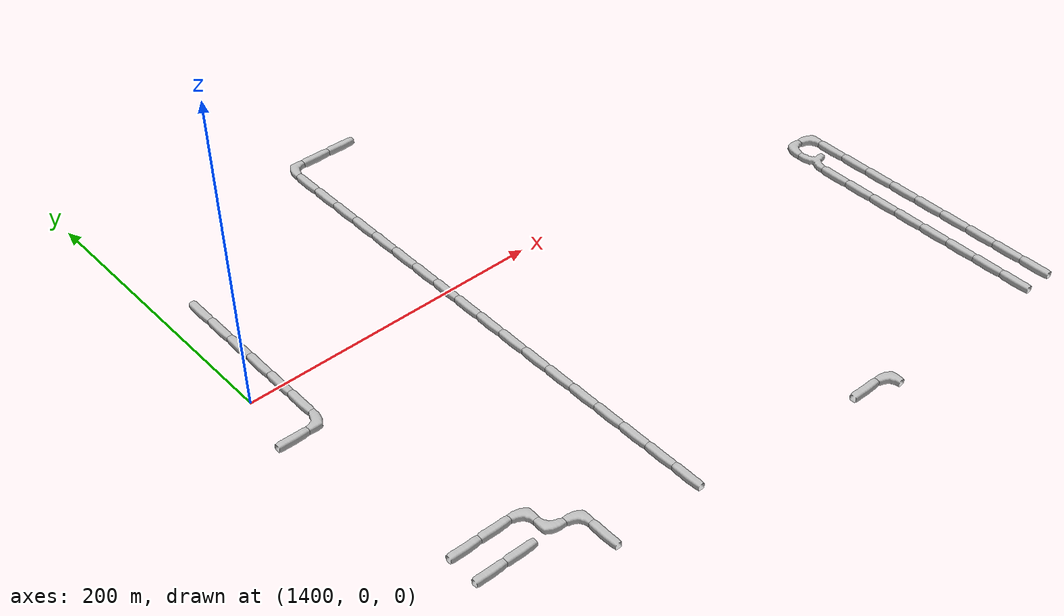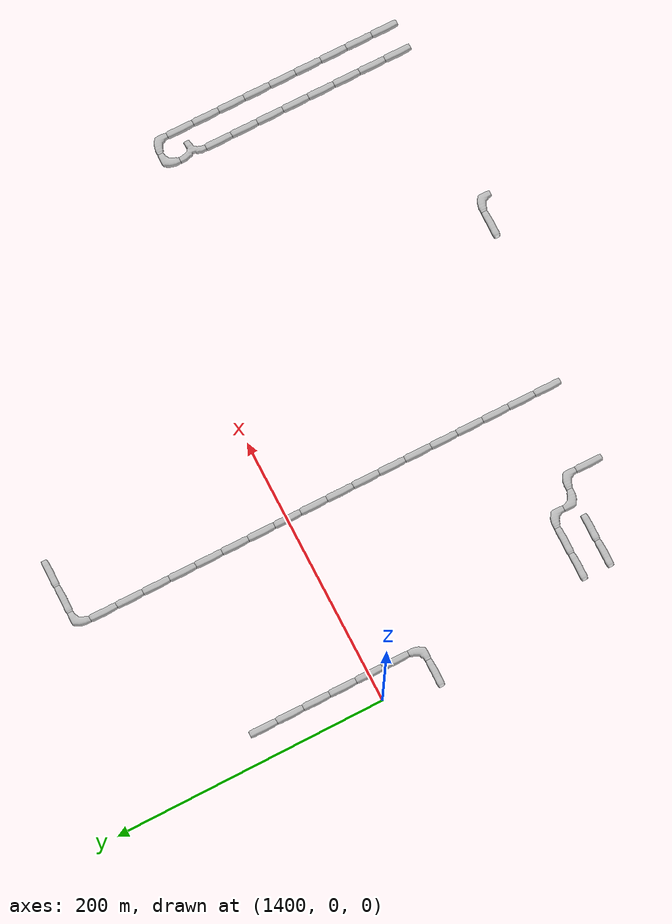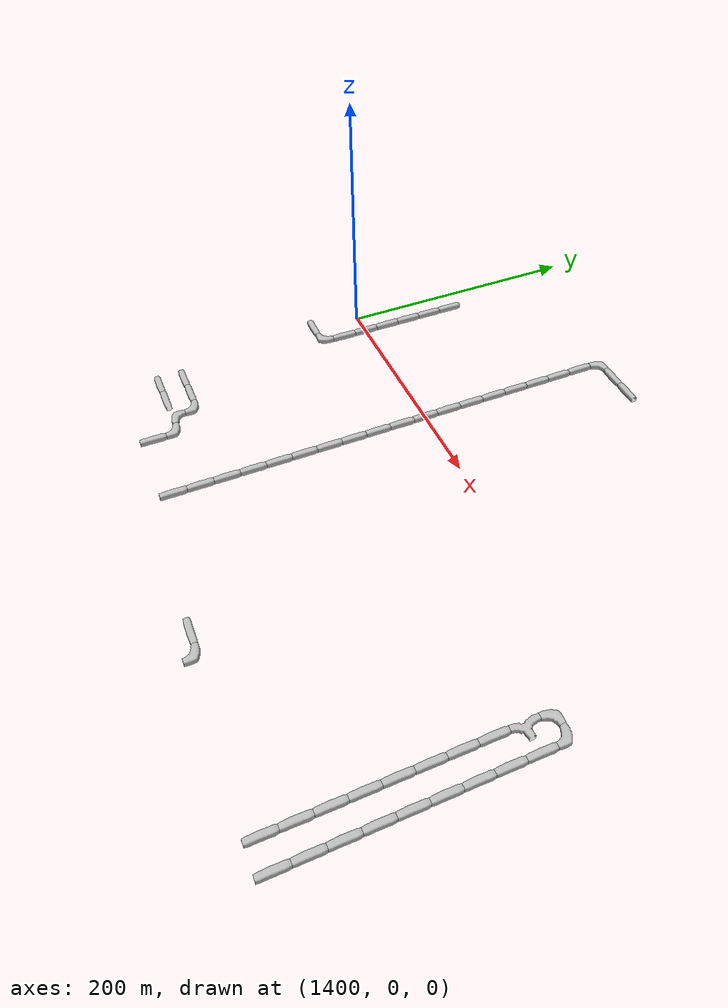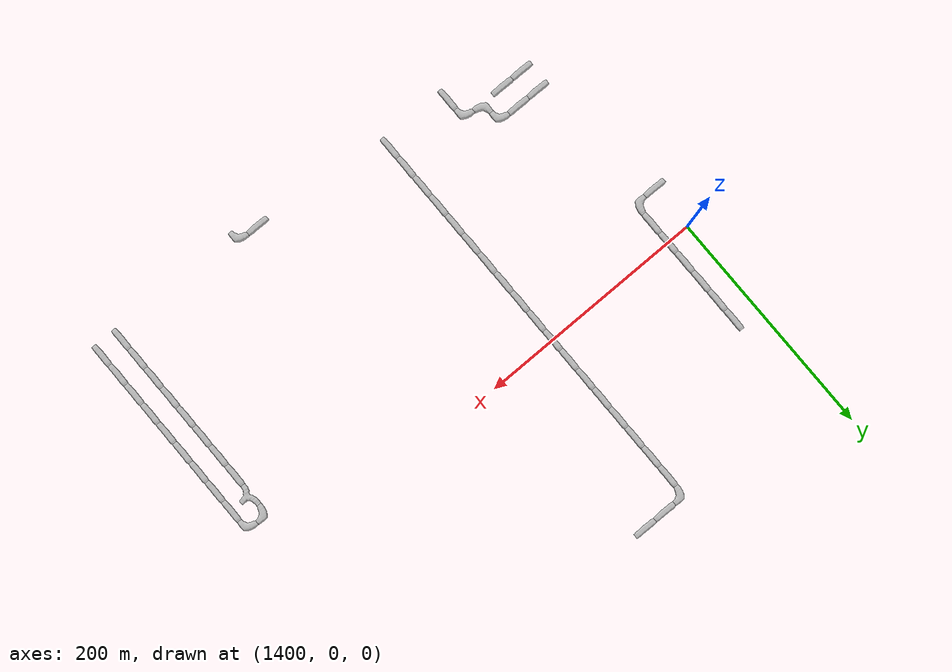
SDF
<sdf version="1.6">
 <world name="cave_32000_8">
  <include>
   <static>true</static>
   <name>cave_91_-11</name>
   <pose>1820 -220 0 0 0 0.0</pose>
   <uri>model://cave_straight_20m</uri>
  </include>
  <include>
   <static>true</static>
   <name>cave_91_-10</name>
   <pose>1820 -200 0 0 0 0.0</pose>
   <uri>model://cave_straight_20m</uri>
  </include>
  <include>
   <static>true</static>
   <name>cave_91_-9</name>
   <pose>1820 -180 0 0 0 0.0</pose>
   <uri>model://cave_straight_20m</uri>
  </include>
  <include>
   <static>true</static>
   <name>cave_91_-8</name>
   <pose>1820 -160 0 0 0 0.0</pose>
   <uri>model://cave_straight_20m</uri>
  </include>
  <include>
   <static>true</static>
   <name>cave_91_-7</name>
   <pose>1820 -140 0 0 0 0.0</pose>
   <uri>model://cave_straight_20m</uri>
  </include>
  <include>
   <static>true</static>
   <name>cave_91_-6</name>
   <pose>1820 -120 0 0 0 0.0</pose>
   <uri>model://cave_straight_20m</uri>
  </include>
  <include>
   <static>true</static>
   <name>cave_91_-5</name>
   <pose>1820 -100 0 0 0 0.0</pose>
   <uri>model://cave_straight_20m</uri>
  </include>
  <include>
   <static>true</static>
   <name>cave_91_-4</name>
   <pose>1820 -80 0 0 0 0.0</pose>
   <uri>model://cave_straight_20m</uri>
  </include>
  <include>
   <static>true</static>
   <name>cave_91_-3</name>
   <pose>1820 -60 0 0 0 0.0</pose>
   <uri>model://cave_straight_20m</uri>
  </include>
  <include>
   <static>true</static>
   <name>cave_91_-2</name>
   <pose>1820 -40 0 0 0 3.141592653589793</pose>
   <uri>model://cave_L_20m</uri>
  </include>
  <include>
   <static>true</static>
   <name>cave_90_-2</name>
   <pose>1800 -40 0 0 0 -1.5707963267948966</pose>
   <uri>model://cave_L_20m</uri>
  </include>
  <include>
   <static>true</static>
   <name>cave_90_-3</name>
   <pose>1800 -60 0 0 0 -1.5707963267948966</pose>
   <uri>model://cave_3way_20m</uri>
  </include>
  <include>
   <static>true</static>
   <name>cave_90_-4</name>
   <pose>1800 -80 0 0 0 0.0</pose>
   <uri>model://cave_straight_20m</uri>
  </include>
  <include>
   <static>true</static>
   <name>cave_90_-5</name>
   <pose>1800 -100 0 0 0 0.0</pose>
   <uri>model://cave_straight_20m</uri>
  </include>
  <include>
   <static>true</static>
   <name>cave_90_-6</name>
   <pose>1800 -120 0 0 0 0.0</pose>
   <uri>model://cave_straight_20m</uri>
  </include>
  <include>
   <static>true</static>
   <name>cave_90_-7</name>
   <pose>1800 -140 0 0 0 0.0</pose>
   <uri>model://cave_straight_20m</uri>
  </include>
  <include>
   <static>true</static>
   <name>cave_90_-8</name>
   <pose>1800 -160 0 0 0 0.0</pose>
   <uri>model://cave_straight_20m</uri>
  </include>
  <include>
   <static>true</static>
   <name>cave_90_-9</name>
   <pose>1800 -180 0 0 0 0.0</pose>
   <uri>model://cave_straight_20m</uri>
  </include>
  <include>
   <static>true</static>
   <name>cave_90_-10</name>
   <pose>1800 -200 0 0 0 0.0</pose>
   <uri>model://cave_straight_20m</uri>
  </include>
  <include>
   <static>true</static>
   <name>cave_90_-11</name>
   <pose>1800 -220 0 0 0 0.0</pose>
   <uri>model://cave_straight_20m</uri>
  </include>
  <include>
   <static>true</static>
   <name>cave_84_-11</name>
   <pose>1680 -220 0 0 0 3.141592653589793</pose>
   <uri>model://cave_L_20m</uri>
  </include>
  <include>
   <static>true</static>
   <name>cave_83_-11</name>
   <pose>1660 -220 0 0 0 1.5707963267948966</pose>
   <uri>model://cave_straight_20m</uri>
  </include>
  <include>
   <static>true</static>
   <name>cave_77_-10</name>
   <pose>1540 -200 0 0 0 0.0</pose>
   <uri>model://cave_straight_20m</uri>
  </include>
  <include>
   <static>true</static>
   <name>cave_77_-9</name>
   <pose>1540 -180 0 0 0 0.0</pose>
   <uri>model://cave_straight_20m</uri>
  </include>
  <include>
   <static>true</static>
   <name>cave_77_-8</name>
   <pose>1540 -160 0 0 0 0.0</pose>
   <uri>model://cave_straight_20m</uri>
  </include>
  <include>
   <static>true</static>
   <name>cave_77_-7</name>
   <pose>1540 -140 0 0 0 0.0</pose>
   <uri>model://cave_straight_20m</uri>
  </include>
  <include>
   <static>true</static>
   <name>cave_77_-6</name>
   <pose>1540 -120 0 0 0 0.0</pose>
   <uri>model://cave_straight_20m</uri>
  </include>
  <include>
   <static>true</static>
   <name>cave_77_-5</name>
   <pose>1540 -100 0 0 0 0.0</pose>
   <uri>model://cave_straight_20m</uri>
  </include>
  <include>
   <static>true</static>
   <name>cave_77_-4</name>
   <pose>1540 -80 0 0 0 0.0</pose>
   <uri>model://cave_straight_20m</uri>
  </include>
  <include>
   <static>true</static>
   <name>cave_77_-3</name>
   <pose>1540 -60 0 0 0 0.0</pose>
   <uri>model://cave_straight_20m</uri>
  </include>
  <include>
   <static>true</static>
   <name>cave_77_-2</name>
   <pose>1540 -40 0 0 0 0.0</pose>
   <uri>model://cave_straight_20m</uri>
  </include>
  <include>
   <static>true</static>
   <name>cave_77_-1</name>
   <pose>1540 -20 0 0 0 0.0</pose>
   <uri>model://cave_straight_20m</uri>
  </include>
  <include>
   <static>true</static>
   <name>cave_77_0</name>
   <pose>1540 0 0 0 0 0.0</pose>
   <uri>model://cave_straight_20m</uri>
  </include>
  <include>
   <static>true</static>
   <name>cave_77_1</name>
   <pose>1540 20 0 0 0 0.0</pose>
   <uri>model://cave_straight_20m</uri>
  </include>
  <include>
   <static>true</static>
   <name>cave_77_2</name>
   <pose>1540 40 0 0 0 0.0</pose>
   <uri>model://cave_straight_20m</uri>
  </include>
  <include>
   <static>true</static>
   <name>cave_77_3</name>
   <pose>1540 60 0 0 0 0.0</pose>
   <uri>model://cave_straight_20m</uri>
  </include>
  <include>
   <static>true</static>
   <name>cave_77_4</name>
   <pose>1540 80 0 0 0 0.0</pose>
   <uri>model://cave_straight_20m</uri>
  </include>
  <include>
   <static>true</static>
   <name>cave_77_5</name>
   <pose>1540 100 0 0 0 0.0</pose>
   <uri>model://cave_straight_20m</uri>
  </include>
  <include>
   <static>true</static>
   <name>cave_77_6</name>
   <pose>1540 120 0 0 0 0.0</pose>
   <uri>model://cave_straight_20m</uri>
  </include>
  <include>
   <static>true</static>
   <name>cave_77_7</name>
   <pose>1540 140 0 0 0 0.0</pose>
   <uri>model://cave_straight_20m</uri>
  </include>
  <include>
   <static>true</static>
   <name>cave_77_8</name>
   <pose>1540 160 0 0 0 -1.5707963267948966</pose>
   <uri>model://cave_L_20m</uri>
  </include>
  <include>
   <static>true</static>
   <name>cave_78_8</name>
   <pose>1560 160 0 0 0 1.5707963267948966</pose>
   <uri>model://cave_straight_20m</uri>
  </include>
  <include>
   <static>true</static>
   <name>cave_79_8</name>
   <pose>1580 160 0 0 0 1.5707963267948966</pose>
   <uri>model://cave_straight_20m</uri>
  </include>
  <include>
   <static>true</static>
   <name>cave_71_-8</name>
   <pose>1420 -160 0 0 0 1.5707963267948966</pose>
   <uri>model://cave_straight_20m</uri>
  </include>
  <include>
   <static>true</static>
   <name>cave_72_-8</name>
   <pose>1440 -160 0 0 0 1.5707963267948966</pose>
   <uri>model://cave_straight_20m</uri>
  </include>
  <include>
   <static>true</static>
   <name>cave_73_-8</name>
   <pose>1460 -160 0 0 0 3.141592653589793</pose>
   <uri>model://cave_L_20m</uri>
  </include>
  <include>
   <static>true</static>
   <name>cave_73_-9</name>
   <pose>1460 -180 0 0 0 0.0</pose>
   <uri>model://cave_L_20m</uri>
  </include>
  <include>
   <static>true</static>
   <name>cave_74_-9</name>
   <pose>1480 -180 0 0 0 3.141592653589793</pose>
   <uri>model://cave_L_20m</uri>
  </include>
  <include>
   <static>true</static>
   <name>cave_74_-10</name>
   <pose>1480 -200 0 0 0 0.0</pose>
   <uri>model://cave_straight_20m</uri>
  </include>
  <include>
   <static>true</static>
   <name>cave_70_-2</name>
   <pose>1400 -40 0 0 0 1.5707963267948966</pose>
   <uri>model://cave_straight_20m</uri>
  </include>
  <include>
   <static>true</static>
   <name>cave_71_-2</name>
   <pose>1420 -40 0 0 0 1.5707963267948966</pose>
   <uri>model://cave_L_20m</uri>
  </include>
  <include>
   <static>true</static>
   <name>cave_71_-1</name>
   <pose>1420 -20 0 0 0 0.0</pose>
   <uri>model://cave_straight_20m</uri>
  </include>
  <include>
   <static>true</static>
   <name>cave_71_0</name>
   <pose>1420 0 0 0 0 0.0</pose>
   <uri>model://cave_straight_20m</uri>
  </include>
  <include>
   <static>true</static>
   <name>cave_71_1</name>
   <pose>1420 20 0 0 0 0.0</pose>
   <uri>model://cave_straight_20m</uri>
  </include>
  <include>
   <static>true</static>
   <name>cave_71_2</name>
   <pose>1420 40 0 0 0 0.0</pose>
   <uri>model://cave_straight_20m</uri>
  </include>
  <include>
   <static>true</static>
   <name>cave_71_3</name>
   <pose>1420 60 0 0 0 0.0</pose>
   <uri>model://cave_straight_20m</uri>
  </include>
  <include>
   <static>true</static>
   <name>cave_71_4</name>
   <pose>1420 80 0 0 0 0.0</pose>
   <uri>model://cave_straight_20m</uri>
  </include>
  <include>
   <static>true</static>
   <name>cave_71_-9</name>
   <pose>1420 -180 0 0 0 1.5707963267948966</pose>
   <uri>model://cave_straight_20m</uri>
  </include>
  <include>
   <static>true</static>
   <name>cave_72_-9</name>
   <pose>1440 -180 0 0 0 1.5707963267948966</pose>
   <uri>model://cave_straight_20m</uri>
  </include>
 </world>
</sdf>
